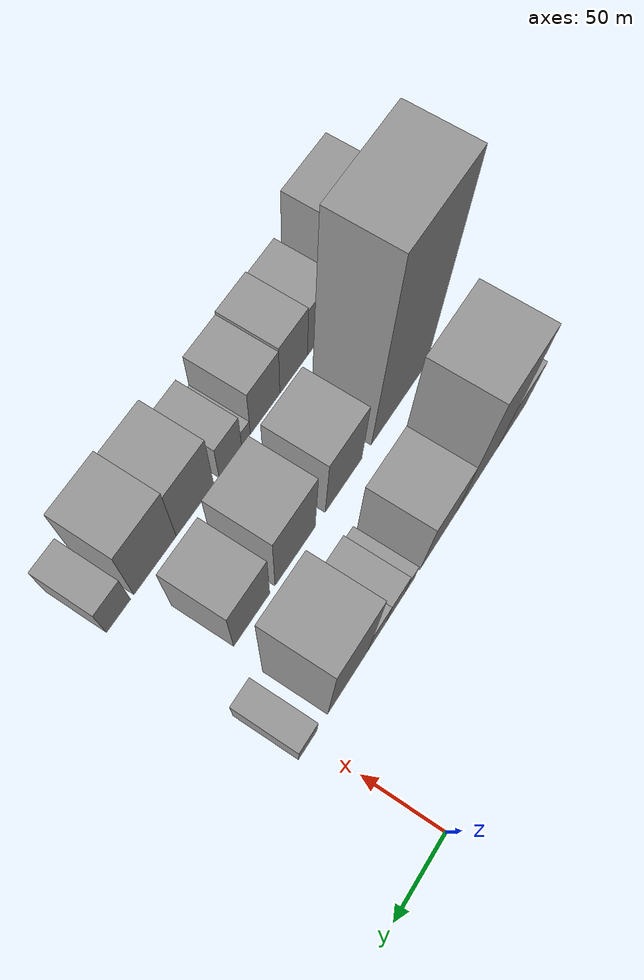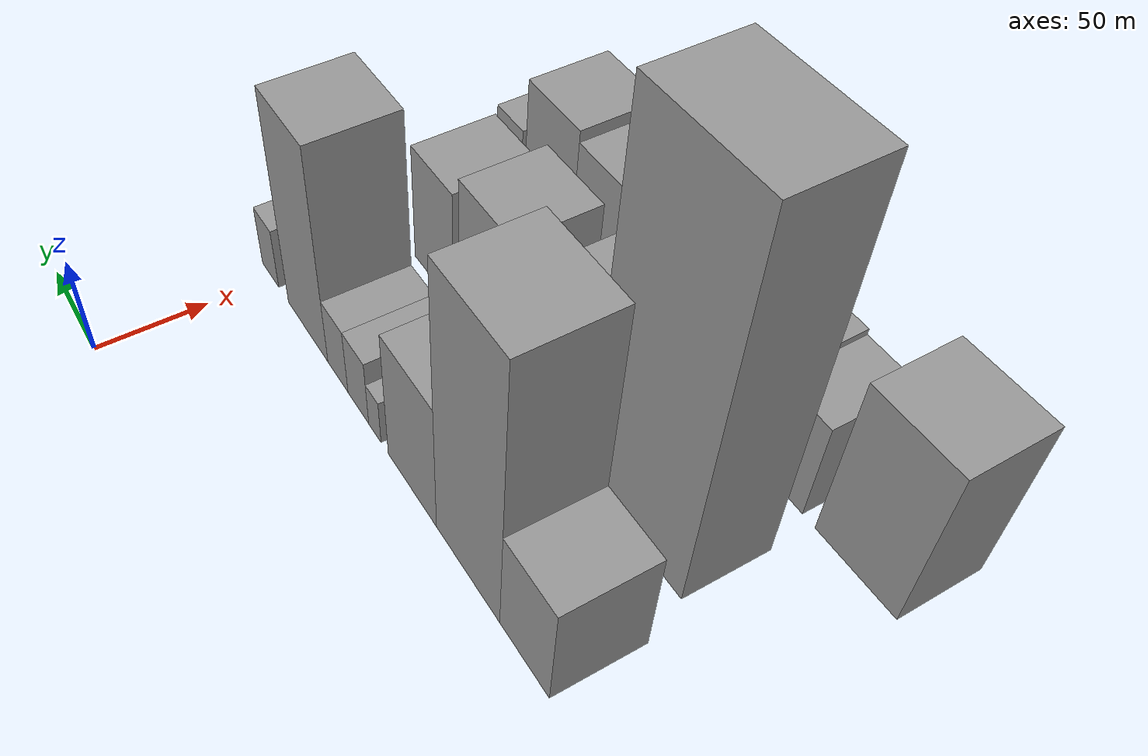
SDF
<sdf version="1.6">
 <world name="default">
  <model name="building_21">
   <static>1</static>
   <pose>100.0000 -207.2316 0 0.000000 0.000000 0.000000</pose>
   <link name="link">
    <pose>0 0 27.00 0 0 0</pose>
    <collision name="collision"><geometry><box><size>40.0000 32.0932 54.0000</size></box></geometry></collision>
    <visual name="visual">
     <cast_shadows>0</cast_shadows>
     <geometry><box><size>40.0000 32.0932 54.0000</size></box></geometry>
     <material>
      <script>
       <uri>model://grey_wall/materials/scripts</uri>
       <uri>model://grey_wall/materials/textures</uri>
       <name>vrc/grey_wall</name>
      </script>
     </material>
    </visual>
   </link>
  </model>
  <model name="building_22">
   <static>1</static>
   <pose>100.0000 -168.6694 0 0.000000 0.000000 0.000000</pose>
   <link name="link">
    <pose>0 0 70.50 0 0 0</pose>
    <collision name="collision"><geometry><box><size>40.0000 45.0312 141.0000</size></box></geometry></collision>
    <visual name="visual">
     <cast_shadows>0</cast_shadows>
     <geometry><box><size>40.0000 45.0312 141.0000</size></box></geometry>
     <material>
      <script>
       <uri>model://grey_wall/materials/scripts</uri>
       <uri>model://grey_wall/materials/textures</uri>
       <name>vrc/grey_wall</name>
      </script>
     </material>
    </visual>
   </link>
  </model>
  <model name="building_23">
   <static>1</static>
   <pose>100.0000 -127.0873 0 0.000000 0.000000 0.000000</pose>
   <link name="link">
    <pose>0 0 34.50 0 0 0</pose>
    <collision name="collision"><geometry><box><size>40.0000 38.1330 69.0000</size></box></geometry></collision>
    <visual name="visual">
     <cast_shadows>0</cast_shadows>
     <geometry><box><size>40.0000 38.1330 69.0000</size></box></geometry>
     <material>
      <script>
       <uri>model://grey_wall/materials/scripts</uri>
       <uri>model://grey_wall/materials/textures</uri>
       <name>vrc/grey_wall</name>
      </script>
     </material>
    </visual>
   </link>
  </model>
  <model name="building_24">
   <static>1</static>
   <pose>100.0000 -96.7946 0 0.000000 0.000000 0.000000</pose>
   <link name="link">
    <pose>0 0 12.00 0 0 0</pose>
    <collision name="collision"><geometry><box><size>40.0000 10.4522 24.0000</size></box></geometry></collision>
    <visual name="visual">
     <cast_shadows>0</cast_shadows>
     <geometry><box><size>40.0000 10.4522 24.0000</size></box></geometry>
     <material>
      <script>
       <uri>model://grey_wall/materials/scripts</uri>
       <uri>model://grey_wall/materials/textures</uri>
       <name>vrc/grey_wall</name>
      </script>
     </material>
    </visual>
   </link>
  </model>
  <model name="building_25">
   <static>1</static>
   <pose>100.0000 -82.4453 0 0.000000 0.000000 0.000000</pose>
   <link name="link">
    <pose>0 0 18.00 0 0 0</pose>
    <collision name="collision"><geometry><box><size>40.0000 18.2464 36.0000</size></box></geometry></collision>
    <visual name="visual">
     <cast_shadows>0</cast_shadows>
     <geometry><box><size>40.0000 18.2464 36.0000</size></box></geometry>
     <material>
      <script>
       <uri>model://grey_wall/materials/scripts</uri>
       <uri>model://grey_wall/materials/textures</uri>
       <name>vrc/grey_wall</name>
      </script>
     </material>
    </visual>
   </link>
  </model>
  <model name="building_26">
   <static>1</static>
   <pose>100.0000 -64.1063 0 0.000000 0.000000 0.000000</pose>
   <link name="link">
    <pose>0 0 18.00 0 0 0</pose>
    <collision name="collision"><geometry><box><size>40.0000 18.4317 36.0000</size></box></geometry></collision>
    <visual name="visual">
     <cast_shadows>0</cast_shadows>
     <geometry><box><size>40.0000 18.4317 36.0000</size></box></geometry>
     <material>
      <script>
       <uri>model://grey_wall/materials/scripts</uri>
       <uri>model://grey_wall/materials/textures</uri>
       <name>vrc/grey_wall</name>
      </script>
     </material>
    </visual>
   </link>
  </model>
  <model name="building_27">
   <static>1</static>
   <pose>100.0000 -35.6017 0 0.000000 0.000000 0.000000</pose>
   <link name="link">
    <pose>0 0 57.00 0 0 0</pose>
    <collision name="collision"><geometry><box><size>40.0000 38.5774 114.0000</size></box></geometry></collision>
    <visual name="visual">
     <cast_shadows>0</cast_shadows>
     <geometry><box><size>40.0000 38.5774 114.0000</size></box></geometry>
     <material>
      <script>
       <uri>model://grey_wall/materials/scripts</uri>
       <uri>model://grey_wall/materials/textures</uri>
       <name>vrc/grey_wall</name>
      </script>
     </material>
    </visual>
   </link>
  </model>
  <model name="building_28">
   <static>1</static>
   <pose>100.0000 2.2748 0 0.000000 0.000000 0.000000</pose>
   <link name="link">
    <pose>0 0 16.50 0 0 0</pose>
    <collision name="collision"><geometry><box><size>40.0000 17.1756 33.0000</size></box></geometry></collision>
    <visual name="visual">
     <cast_shadows>0</cast_shadows>
     <geometry><box><size>40.0000 17.1756 33.0000</size></box></geometry>
     <material>
      <script>
       <uri>model://grey_wall/materials/scripts</uri>
       <uri>model://grey_wall/materials/textures</uri>
       <name>vrc/grey_wall</name>
      </script>
     </material>
    </visual>
   </link>
  </model>
  <model name="building_77">
   <static>1</static>
   <pose>160.0000 -185.1722 0 0.000000 0.000000 0.000000</pose>
   <link name="link">
    <pose>0 0 94.50 0 0 0</pose>
    <collision name="collision"><geometry><box><size>40.0000 60.2305 189.0000</size></box></geometry></collision>
    <visual name="visual">
     <cast_shadows>0</cast_shadows>
     <geometry><box><size>40.0000 60.2305 189.0000</size></box></geometry>
     <material>
      <script>
       <uri>model://grey_wall/materials/scripts</uri>
       <uri>model://grey_wall/materials/textures</uri>
       <name>vrc/grey_wall</name>
      </script>
     </material>
    </visual>
   </link>
  </model>
  <model name="building_78">
   <static>1</static>
   <pose>160.0000 -126.2597 0 0.000000 0.000000 0.000000</pose>
   <link name="link">
    <pose>0 0 34.50 0 0 0</pose>
    <collision name="collision"><geometry><box><size>40.0000 37.5945 69.0000</size></box></geometry></collision>
    <visual name="visual">
     <cast_shadows>0</cast_shadows>
     <geometry><box><size>40.0000 37.5945 69.0000</size></box></geometry>
     <material>
      <script>
       <uri>model://grey_wall/materials/scripts</uri>
       <uri>model://grey_wall/materials/textures</uri>
       <name>vrc/grey_wall</name>
      </script>
     </material>
    </visual>
   </link>
  </model>
  <model name="building_79">
   <static>1</static>
   <pose>160.0000 -77.7265 0 0.000000 0.000000 0.000000</pose>
   <link name="link">
    <pose>0 0 37.50 0 0 0</pose>
    <collision name="collision"><geometry><box><size>40.0000 39.4718 75.0000</size></box></geometry></collision>
    <visual name="visual">
     <cast_shadows>0</cast_shadows>
     <geometry><box><size>40.0000 39.4718 75.0000</size></box></geometry>
     <material>
      <script>
       <uri>model://grey_wall/materials/scripts</uri>
       <uri>model://grey_wall/materials/textures</uri>
       <name>vrc/grey_wall</name>
      </script>
     </material>
    </visual>
   </link>
  </model>
  <model name="building_80">
   <static>1</static>
   <pose>160.0000 -35.9864 0 0.000000 0.000000 0.000000</pose>
   <link name="link">
    <pose>0 0 31.50 0 0 0</pose>
    <collision name="collision"><geometry><box><size>40.0000 34.0084 63.0000</size></box></geometry></collision>
    <visual name="visual">
     <cast_shadows>0</cast_shadows>
     <geometry><box><size>40.0000 34.0084 63.0000</size></box></geometry>
     <material>
      <script>
       <uri>model://grey_wall/materials/scripts</uri>
       <uri>model://grey_wall/materials/textures</uri>
       <name>vrc/grey_wall</name>
      </script>
     </material>
    </visual>
   </link>
  </model>
  <model name="building_135">
   <static>1</static>
   <pose>220.0000 -237.5979 0 0.000000 0.000000 0.000000</pose>
   <link name="link">
    <pose>0 0 42.00 0 0 0</pose>
    <collision name="collision"><geometry><box><size>40.0000 43.1493 84.0000</size></box></geometry></collision>
    <visual name="visual">
     <cast_shadows>0</cast_shadows>
     <geometry><box><size>40.0000 43.1493 84.0000</size></box></geometry>
     <material>
      <script>
       <uri>model://grey_wall/materials/scripts</uri>
       <uri>model://grey_wall/materials/textures</uri>
       <name>vrc/grey_wall</name>
      </script>
     </material>
    </visual>
   </link>
  </model>
  <model name="building_136">
   <static>1</static>
   <pose>220.0000 -195.4484 0 0.000000 0.000000 0.000000</pose>
   <link name="link">
    <pose>0 0 25.50 0 0 0</pose>
    <collision name="collision"><geometry><box><size>40.0000 27.1496 51.0000</size></box></geometry></collision>
    <visual name="visual">
     <cast_shadows>0</cast_shadows>
     <geometry><box><size>40.0000 27.1496 51.0000</size></box></geometry>
     <material>
      <script>
       <uri>model://grey_wall/materials/scripts</uri>
       <uri>model://grey_wall/materials/textures</uri>
       <name>vrc/grey_wall</name>
      </script>
     </material>
    </visual>
   </link>
  </model>
  <model name="building_137">
   <static>1</static>
   <pose>220.0000 -167.5142 0 0.000000 0.000000 0.000000</pose>
   <link name="link">
    <pose>0 0 27.00 0 0 0</pose>
    <collision name="collision"><geometry><box><size>40.0000 28.7188 54.0000</size></box></geometry></collision>
    <visual name="visual">
     <cast_shadows>0</cast_shadows>
     <geometry><box><size>40.0000 28.7188 54.0000</size></box></geometry>
     <material>
      <script>
       <uri>model://grey_wall/materials/scripts</uri>
       <uri>model://grey_wall/materials/textures</uri>
       <name>vrc/grey_wall</name>
      </script>
     </material>
    </visual>
   </link>
  </model>
  <model name="building_138">
   <static>1</static>
   <pose>220.0000 -138.2313 0 0.000000 0.000000 0.000000</pose>
   <link name="link">
    <pose>0 0 25.50 0 0 0</pose>
    <collision name="collision"><geometry><box><size>40.0000 29.8470 51.0000</size></box></geometry></collision>
    <visual name="visual">
     <cast_shadows>0</cast_shadows>
     <geometry><box><size>40.0000 29.8470 51.0000</size></box></geometry>
     <material>
      <script>
       <uri>model://grey_wall/materials/scripts</uri>
       <uri>model://grey_wall/materials/textures</uri>
       <name>vrc/grey_wall</name>
      </script>
     </material>
    </visual>
   </link>
  </model>
  <model name="building_139">
   <static>1</static>
   <pose>220.0000 -118.9698 0 0.000000 0.000000 0.000000</pose>
   <link name="link">
    <pose>0 0 9.00 0 0 0</pose>
    <collision name="collision"><geometry><box><size>40.0000 8.6760 18.0000</size></box></geometry></collision>
    <visual name="visual">
     <cast_shadows>0</cast_shadows>
     <geometry><box><size>40.0000 8.6760 18.0000</size></box></geometry>
     <material>
      <script>
       <uri>model://grey_wall/materials/scripts</uri>
       <uri>model://grey_wall/materials/textures</uri>
       <name>vrc/grey_wall</name>
      </script>
     </material>
    </visual>
   </link>
  </model>
  <model name="building_140">
   <static>1</static>
   <pose>220.0000 -103.5277 0 0.000000 0.000000 0.000000</pose>
   <link name="link">
    <pose>0 0 19.50 0 0 0</pose>
    <collision name="collision"><geometry><box><size>40.0000 22.2082 39.0000</size></box></geometry></collision>
    <visual name="visual">
     <cast_shadows>0</cast_shadows>
     <geometry><box><size>40.0000 22.2082 39.0000</size></box></geometry>
     <material>
      <script>
       <uri>model://grey_wall/materials/scripts</uri>
       <uri>model://grey_wall/materials/textures</uri>
       <name>vrc/grey_wall</name>
      </script>
     </material>
    </visual>
   </link>
  </model>
  <model name="building_141">
   <static>1</static>
   <pose>220.0000 -69.5356 0 0.000000 0.000000 0.000000</pose>
   <link name="link">
    <pose>0 0 31.50 0 0 0</pose>
    <collision name="collision"><geometry><box><size>40.0000 35.7761 63.0000</size></box></geometry></collision>
    <visual name="visual">
     <cast_shadows>0</cast_shadows>
     <geometry><box><size>40.0000 35.7761 63.0000</size></box></geometry>
     <material>
      <script>
       <uri>model://grey_wall/materials/scripts</uri>
       <uri>model://grey_wall/materials/textures</uri>
       <name>vrc/grey_wall</name>
      </script>
     </material>
    </visual>
   </link>
  </model>
  <model name="building_142">
   <static>1</static>
   <pose>220.0000 -32.1963 0 0.000000 0.000000 0.000000</pose>
   <link name="link">
    <pose>0 0 34.50 0 0 0</pose>
    <collision name="collision"><geometry><box><size>40.0000 38.9025 69.0000</size></box></geometry></collision>
    <visual name="visual">
     <cast_shadows>0</cast_shadows>
     <geometry><box><size>40.0000 38.9025 69.0000</size></box></geometry>
     <material>
      <script>
       <uri>model://grey_wall/materials/scripts</uri>
       <uri>model://grey_wall/materials/textures</uri>
       <name>vrc/grey_wall</name>
      </script>
     </material>
    </visual>
   </link>
  </model>
  <model name="building_143">
   <static>1</static>
   <pose>220.0000 0.9673 0 0.000000 0.000000 0.000000</pose>
   <link name="link">
    <pose>0 0 19.50 0 0 0</pose>
    <collision name="collision"><geometry><box><size>40.0000 21.4247 39.0000</size></box></geometry></collision>
    <visual name="visual">
     <cast_shadows>0</cast_shadows>
     <geometry><box><size>40.0000 21.4247 39.0000</size></box></geometry>
     <material>
      <script>
       <uri>model://grey_wall/materials/scripts</uri>
       <uri>model://grey_wall/materials/textures</uri>
       <name>vrc/grey_wall</name>
      </script>
     </material>
    </visual>
   </link>
  </model>
 </world>
</sdf>
